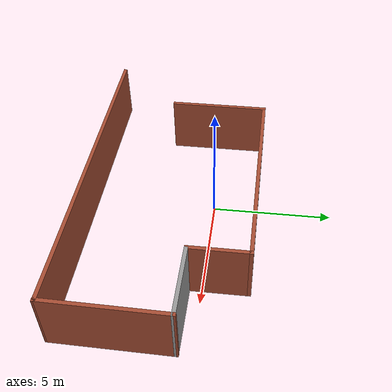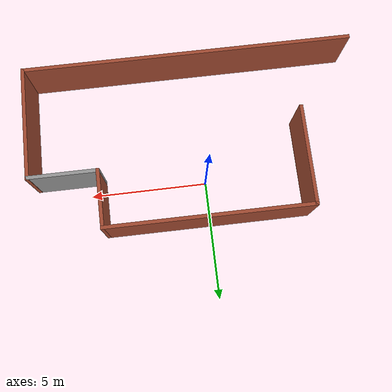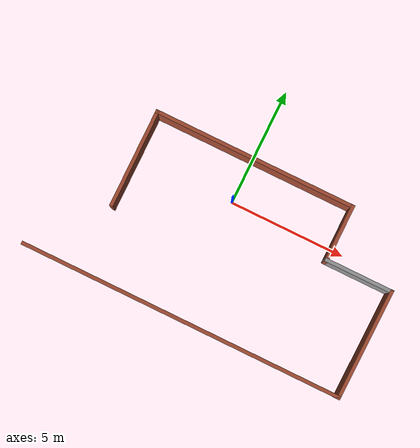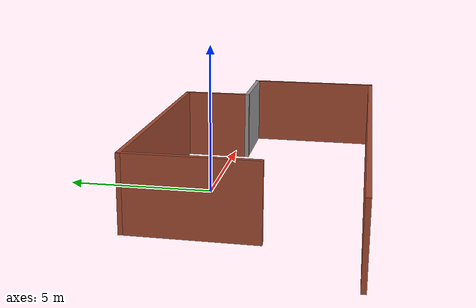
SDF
<?xml version='1.0'?>
<sdf version='1.7'>
  <model name='robot'>
    <pose>0.295477 -1.70048 0 0 -0 0</pose>
    <link name='Wall_0'>
      <collision name='Wall_0_Collision'>
        <geometry>
          <box>
            <size>14 0.15 2.5</size>
          </box>
        </geometry>
        <pose>0 0 1.25 0 -0 0</pose>
      </collision>
      <visual name='Wall_0_Visual'>
        <pose>0 0 1.25 0 -0 0</pose>
        <geometry>
          <box>
            <size>14 0.15 2.5</size>
          </box>
        </geometry>
        <material>
          <script>
            <uri>file://media/materials/scripts/gazebo.material</uri>
            <name>Gazebo/Bricks</name>
          </script>
          <ambient>1 1 1 1</ambient>
        </material>
        <meta>
          <layer>0</layer>
        </meta>
      </visual>
      <pose>-0.030477 -3.49952 0 0 -0 0</pose>
    </link>
    <link name='Wall_1'>
      <collision name='Wall_1_Collision'>
        <geometry>
          <box>
            <size>4.83038 0.15 2.5</size>
          </box>
        </geometry>
        <pose>0 0 1.25 0 -0 0</pose>
      </collision>
      <visual name='Wall_1_Visual'>
        <pose>0 0 1.25 0 -0 0</pose>
        <geometry>
          <box>
            <size>4.83038 0.15 2.5</size>
          </box>
        </geometry>
        <material>
          <script>
            <uri>file://media/materials/scripts/gazebo.material</uri>
            <name>Gazebo/Bricks</name>
          </script>
          <ambient>1 1 1 1</ambient>
        </material>
        <meta>
          <layer>0</layer>
        </meta>
      </visual>
      <pose>6.92452 -1.16952 0 0 -0 1.55798</pose>
    </link>
    <link name='Wall_2'>
      <collision name='Wall_2_Collision'>
        <geometry>
          <box>
            <size>3 0.15 2.5</size>
          </box>
        </geometry>
        <pose>0 0 1.25 0 -0 0</pose>
      </collision>
      <visual name='Wall_2_Visual'>
        <pose>0 0 1.25 0 -0 0</pose>
        <geometry>
          <box>
            <size>3 0.15 2.5</size>
          </box>
        </geometry>
        <material>
          <script>
            <uri>file://media/materials/scripts/gazebo.material</uri>
            <name>Gazebo/Grey</name>
          </script>
          <ambient>1 1 1 1</ambient>
        </material>
        <meta>
          <layer>0</layer>
        </meta>
      </visual>
      <pose>5.52952 1.16048 0 0 -0 3.14159</pose>
    </link>
    <link name='Wall_4'>
      <collision name='Wall_4_Collision'>
        <geometry>
          <box>
            <size>2.5 0.15 2.5</size>
          </box>
        </geometry>
        <pose>0 0 1.25 0 -0 0</pose>
      </collision>
      <visual name='Wall_4_Visual'>
        <pose>0 0 1.25 0 -0 0</pose>
        <geometry>
          <box>
            <size>2.5 0.15 2.5</size>
          </box>
        </geometry>
        <material>
          <script>
            <uri>file://media/materials/scripts/gazebo.material</uri>
            <name>Gazebo/Bricks</name>
          </script>
          <ambient>1 1 1 1</ambient>
        </material>
        <meta>
          <layer>0</layer>
        </meta>
      </visual>
      <pose>4.10452 2.33548 0 0 -0 1.5708</pose>
    </link>
    <link name='Wall_5'>
      <collision name='Wall_5_Collision'>
        <geometry>
          <box>
            <size>8.75 0.15 2.5</size>
          </box>
        </geometry>
        <pose>0 0 1.25 0 -0 0</pose>
      </collision>
      <visual name='Wall_5_Visual'>
        <pose>0 0 1.25 0 -0 0</pose>
        <geometry>
          <box>
            <size>8.75 0.15 2.5</size>
          </box>
        </geometry>
        <material>
          <script>
            <uri>file://media/materials/scripts/gazebo.material</uri>
            <name>Gazebo/Bricks</name>
          </script>
          <ambient>1 1 1 1</ambient>
        </material>
        <meta>
          <layer>0</layer>
        </meta>
      </visual>
      <pose>-0.195477 3.51048 0 0 -0 3.14159</pose>
    </link>
    <link name='Wall_6'>
      <collision name='Wall_6_Collision'>
        <geometry>
          <box>
            <size>4.25 0.15 2.5</size>
          </box>
        </geometry>
        <pose>0 0 1.25 0 -0 0</pose>
      </collision>
      <visual name='Wall_6_Visual'>
        <pose>0 0 1.25 0 -0 0</pose>
        <geometry>
          <box>
            <size>4.25 0.15 2.5</size>
          </box>
        </geometry>
        <material>
          <script>
            <uri>file://media/materials/scripts/gazebo.material</uri>
            <name>Gazebo/Bricks</name>
          </script>
          <ambient>1 1 1 1</ambient>
        </material>
        <meta>
          <layer>0</layer>
        </meta>
      </visual>
      <pose>-4.49548 1.46048 0 0 -0 -1.5708</pose>
    </link>
    <static>1</static>
  </model>
</sdf>
